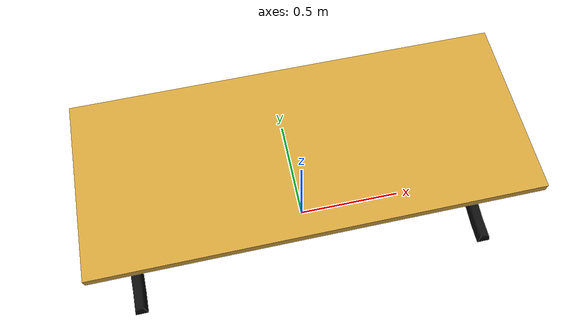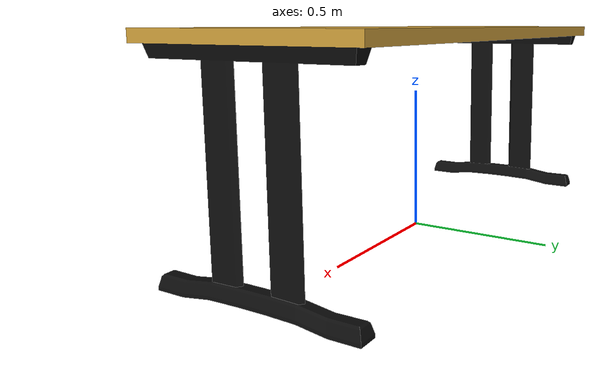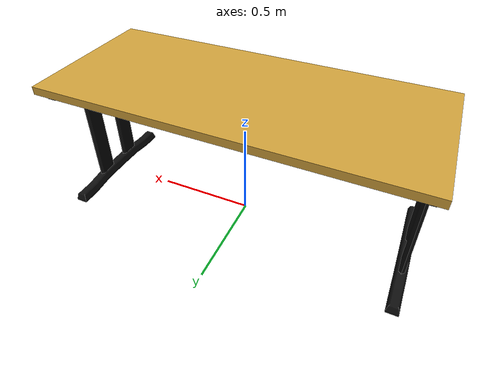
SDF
<?xml version='1.0'?>
<sdf version="1.4">
	<model name="desk">
		<static>1</static>
		<link name="link">
			<visual name="mesh">
				<geometry>
					<mesh>
						<uri>model://meshes/desk.dae</uri>
					</mesh>
				</geometry>
			</visual>
			<collision name="top_collider">
				<pose>0 0 0.71 0 0 0</pose>
				<geometry>
					<box>
						<size>1.8 0.75 0.04</size>
					</box>
				</geometry>
			</collision>
			<collision name="left_leg">
				<pose>0.85 0 0.345 0 0 0</pose>
				<geometry>
					<box>
						<size>0.06 0.69 0.69</size>
					</box>
				</geometry>
			</collision>
			<collision name="right_leg">
				<pose>-0.85 0 0.345 0 0 0</pose>
				<geometry>
					<box>
						<size>0.06 0.69 0.69</size>
					</box>
				</geometry>
			</collision>
		</link>
	</model>
</sdf>
